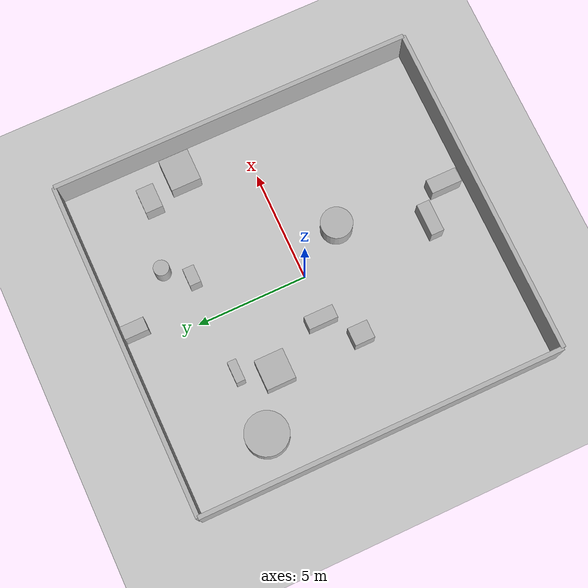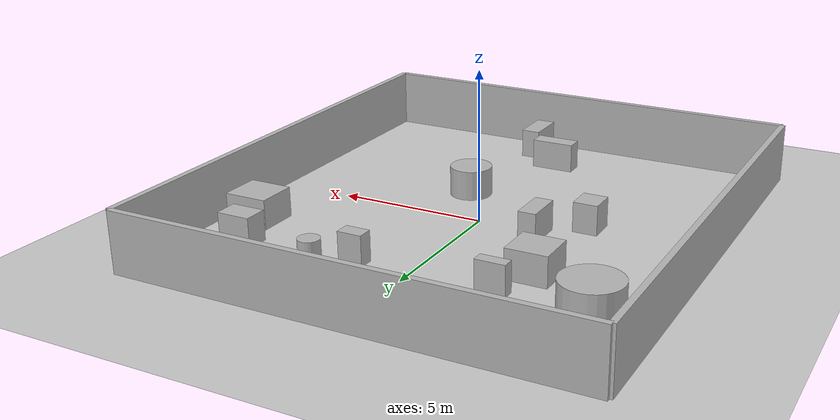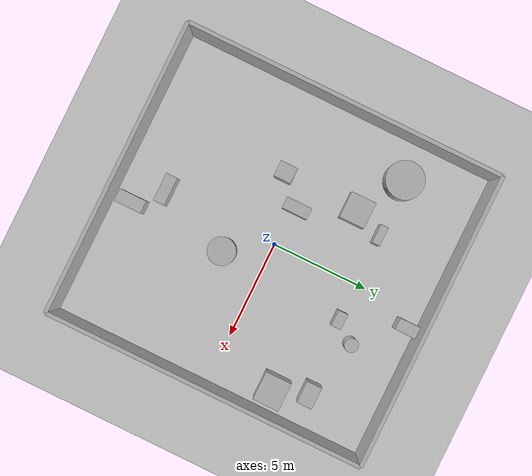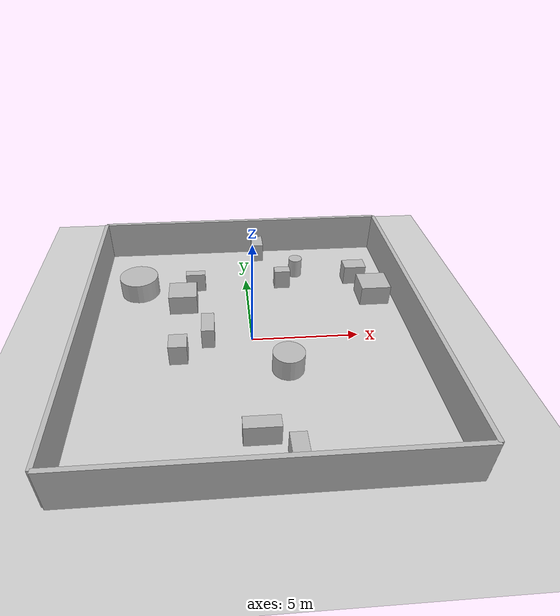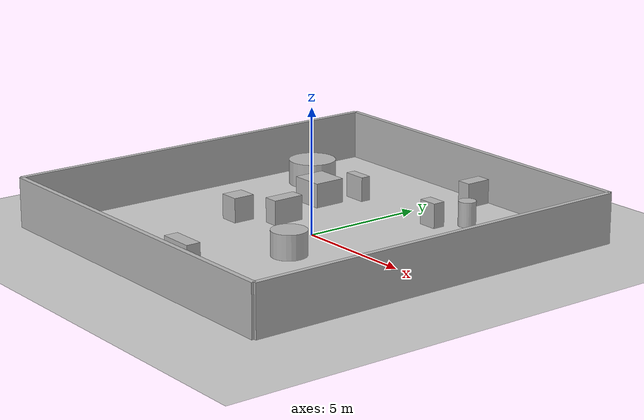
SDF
<?xml version="1.0"?>
<sdf version="1.6">
  <world name="env_37">

    <include><uri>model://ground_plane</uri></include>
    <include><uri>model://sun</uri></include>

    <!-- WALLS -->
    <model name="wall_north"><static>true</static><pose>0 8.223710807922949 1 0 0 0</pose>
      <link name="link"><collision name="collision">
        <geometry><box><size>15.17673949124499 0.2 2</size></box></geometry>
      </collision><visual name="visual">
        <geometry><box><size>15.17673949124499 0.2 2</size></box></geometry>
      </visual></link>
    </model>

    <model name="wall_south"><static>true</static><pose>0 -8.223710807922949 1 0 0 0</pose>
      <link name="link"><collision name="collision">
        <geometry><box><size>15.17673949124499 0.2 2</size></box></geometry>
      </collision><visual name="visual">
        <geometry><box><size>15.17673949124499 0.2 2</size></box></geometry>
      </visual></link>
    </model>

    <model name="wall_east"><static>true</static><pose>7.588369745622495 0 1 0 0 1.57</pose>
      <link name="link"><collision name="collision">
        <geometry><box><size>16.447421615845897 0.2 2</size></box></geometry>
      </collision><visual name="visual">
        <geometry><box><size>16.447421615845897 0.2 2</size></box></geometry>
      </visual></link>
    </model>

    <model name="wall_west"><static>true</static><pose>-7.588369745622495 0 1 0 0 1.57</pose>
      <link name="link"><collision name="collision">
        <geometry><box><size>16.447421615845897 0.2 2</size></box></geometry>
      </collision><visual name="visual">
        <geometry><box><size>16.447421615845897 0.2 2</size></box></geometry>
      </visual></link>
    </model>

    <!-- SENSOR -->

    <model name="lidar_sensor">
      <static>true</static>
      <pose>-6.584575757526409 7.249589105563047 0.4 0 0 0</pose>
      <link name="link">
        <sensor name="lidar" type="ray">
          <pose>0 0 0 0 0 0</pose>
          <visualize>true</visualize>
          <always_on>true</always_on>
          <update_rate>10</update_rate>
          <ray>
            <scan><horizontal>
              <samples>120</samples>
              <resolution>1</resolution>
              <min_angle>-3.14159</min_angle>
              <max_angle>3.14159</max_angle>
            </horizontal></scan>
            <range><min>0.15</min><max>20.0</max><resolution>0.01</resolution></range>
          </ray>
          <plugin name="lidar_plugin" filename="liblidar_plugin.so"/>
        </sensor>
      </link>
    </model>

    <!-- OBSTACLES -->

    <model name="obstacle_0">
      <static>true</static>
      <pose>-2.650525434509926 4.395833466410085 0.5 0 0 0</pose>
      <link name="link">
        <collision name="collision">
          <geometry><box><size>0.98 0.4 1.0</size></box></geometry>
        </collision>
        <visual name="visual">
          <geometry><box><size>0.98 0.4 1.0</size></box></geometry>
        </visual>
      </link>
    </model>

    <model name="obstacle_1">
      <static>true</static>
      <pose>0.803271906294162 7.551307902633578 0.5 0 0 0</pose>
      <link name="link">
        <collision name="collision">
          <geometry><box><size>0.6 1.07 1.0</size></box></geometry>
        </collision>
        <visual name="visual">
          <geometry><box><size>0.6 1.07 1.0</size></box></geometry>
        </visual>
      </link>
    </model>

    <model name="obstacle_2">
      <static>true</static>
      <pose>2.7306406962833183 5.477665389683921 0.5 0 0 0</pose>
      <link name="link">
        <collision name="collision">
          <geometry><cylinder><radius>0.35</radius><length>1.0</length></cylinder></geometry>
        </collision>
        <visual name="visual">
          <geometry><cylinder><radius>0.35</radius><length>1.0</length></cylinder></geometry>
        </visual>
      </link>
    </model>

    <model name="obstacle_3">
      <static>true</static>
      <pose>1.1669787852106666 -7.154517089597508 0.5 0 0 0</pose>
      <link name="link">
        <collision name="collision">
          <geometry><box><size>0.65 1.4 1.0</size></box></geometry>
        </collision>
        <visual name="visual">
          <geometry><box><size>0.65 1.4 1.0</size></box></geometry>
        </visual>
      </link>
    </model>

    <model name="obstacle_4">
      <static>true</static>
      <pose>-0.08255901935397514 -5.890132587735941 0.5 0 0 0</pose>
      <link name="link">
        <collision name="collision">
          <geometry><box><size>1.47 0.59 1.0</size></box></geometry>
        </collision>
        <visual name="visual">
          <geometry><box><size>1.47 0.59 1.0</size></box></geometry>
        </visual>
      </link>
    </model>

    <model name="obstacle_5">
      <static>true</static>
      <pose>-5.560924789830291 4.30724526192035 0.5 0 0 0</pose>
      <link name="link">
        <collision name="collision">
          <geometry><cylinder><radius>0.97</radius><length>1.0</length></cylinder></geometry>
        </collision>
        <visual name="visual">
          <geometry><cylinder><radius>0.97</radius><length>1.0</length></cylinder></geometry>
        </visual>
      </link>
    </model>

    <model name="obstacle_6">
      <static>true</static>
      <pose>5.774041710251405 4.717347492054174 0.5 0 0 0</pose>
      <link name="link">
        <collision name="collision">
          <geometry><box><size>1.13 0.79 1.0</size></box></geometry>
        </collision>
        <visual name="visual">
          <geometry><box><size>1.13 0.79 1.0</size></box></geometry>
        </visual>
      </link>
    </model>

    <model name="obstacle_7">
      <static>true</static>
      <pose>6.401589589845511 3.0238369588349023 0.5 0 0 0</pose>
      <link name="link">
        <collision name="collision">
          <geometry><box><size>1.47 1.36 1.0</size></box></geometry>
        </collision>
        <visual name="visual">
          <geometry><box><size>1.47 1.36 1.0</size></box></geometry>
        </visual>
      </link>
    </model>

    <model name="obstacle_8">
      <static>true</static>
      <pose>1.4038244100872692 -2.1450425645533153 0.5 0 0 0</pose>
      <link name="link">
        <collision name="collision">
          <geometry><cylinder><radius>0.71</radius><length>1.0</length></cylinder></geometry>
        </collision>
        <visual name="visual">
          <geometry><cylinder><radius>0.71</radius><length>1.0</length></cylinder></geometry>
        </visual>
      </link>
    </model>

    <model name="obstacle_9">
      <static>true</static>
      <pose>-2.05457035068868 0.2126842956160484 0.5 0 0 0</pose>
      <link name="link">
        <collision name="collision">
          <geometry><box><size>0.6 1.32 1.0</size></box></geometry>
        </collision>
        <visual name="visual">
          <geometry><box><size>0.6 1.32 1.0</size></box></geometry>
        </visual>
      </link>
    </model>

    <model name="obstacle_10">
      <static>true</static>
      <pose>1.8827866690504447 4.429764920275224 0.5 0 0 0</pose>
      <link name="link">
        <collision name="collision">
          <geometry><box><size>0.81 0.51 1.0</size></box></geometry>
        </collision>
        <visual name="visual">
          <geometry><box><size>0.81 0.51 1.0</size></box></geometry>
        </visual>
      </link>
    </model>

    <model name="obstacle_11">
      <static>true</static>
      <pose>-3.2615977893456174 2.889977153170568 0.5 0 0 0</pose>
      <link name="link">
        <collision name="collision">
          <geometry><box><size>1.37 1.31 1.0</size></box></geometry>
        </collision>
        <visual name="visual">
          <geometry><box><size>1.37 1.31 1.0</size></box></geometry>
        </visual>
      </link>
    </model>

    <model name="obstacle_12">
      <static>true</static>
      <pose>-3.378682616261126 -1.0401777586746848 0.5 0 0 0</pose>
      <link name="link">
        <collision name="collision">
          <geometry><box><size>0.82 0.9 1.0</size></box></geometry>
        </collision>
        <visual name="visual">
          <geometry><box><size>0.82 0.9 1.0</size></box></geometry>
        </visual>
      </link>
    </model>

  </world>
</sdf>
